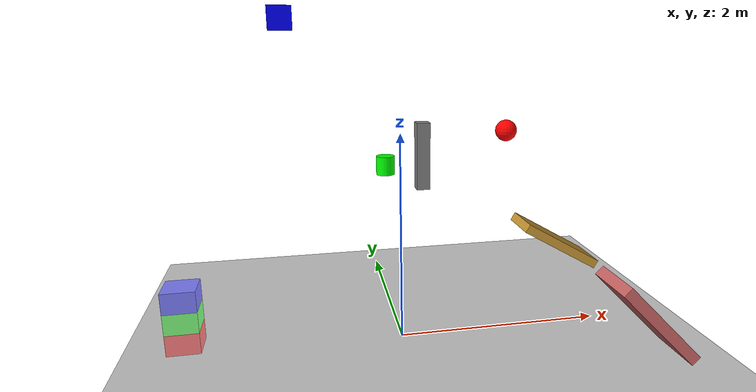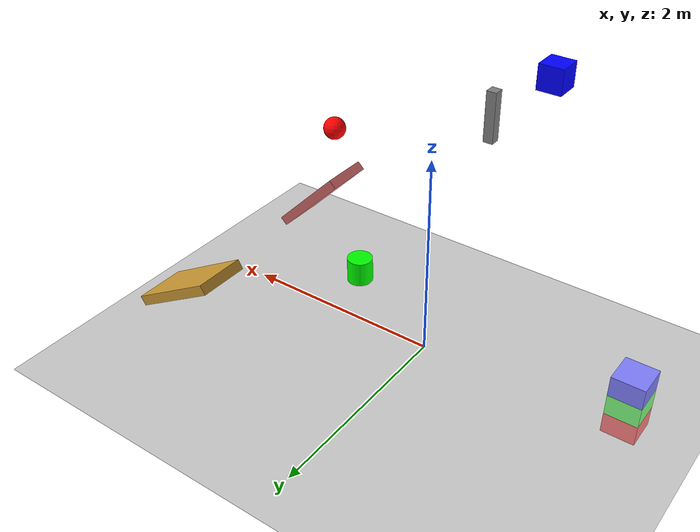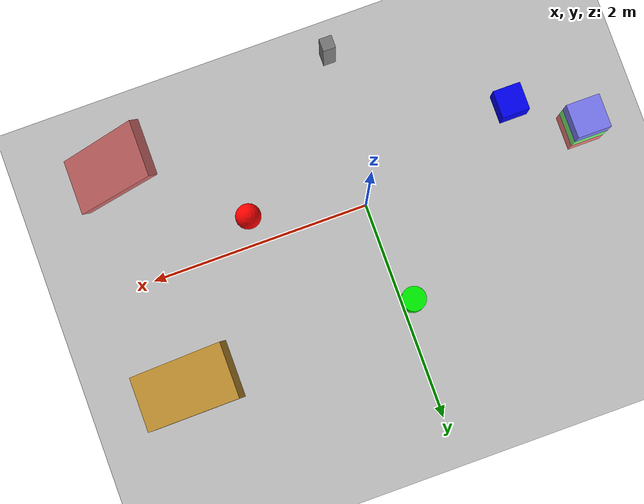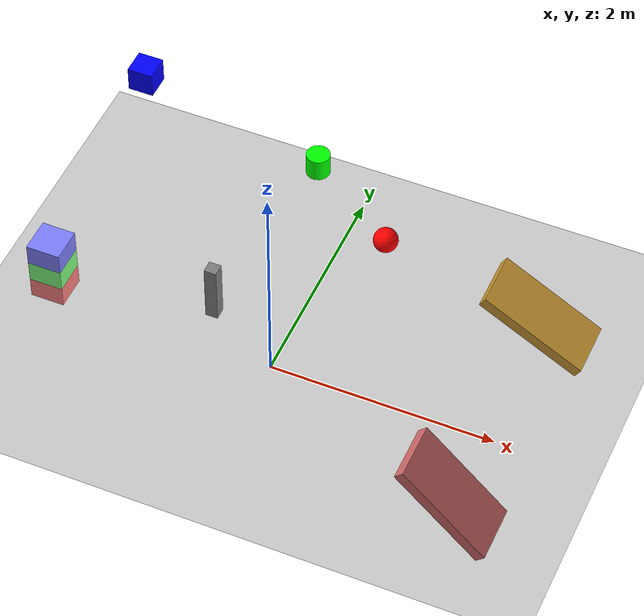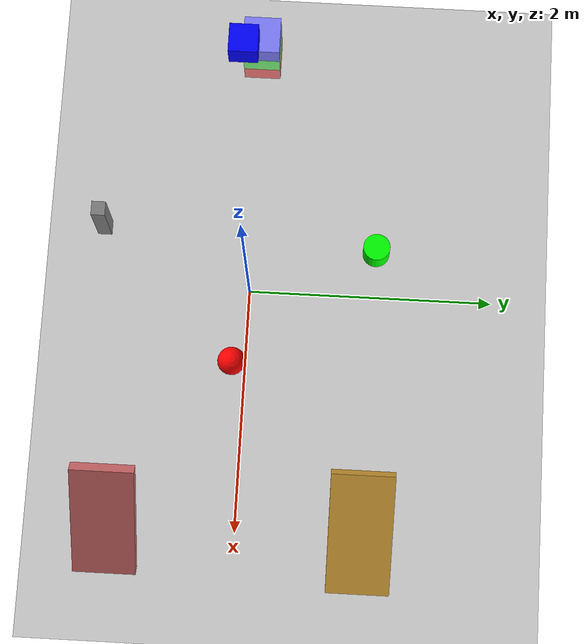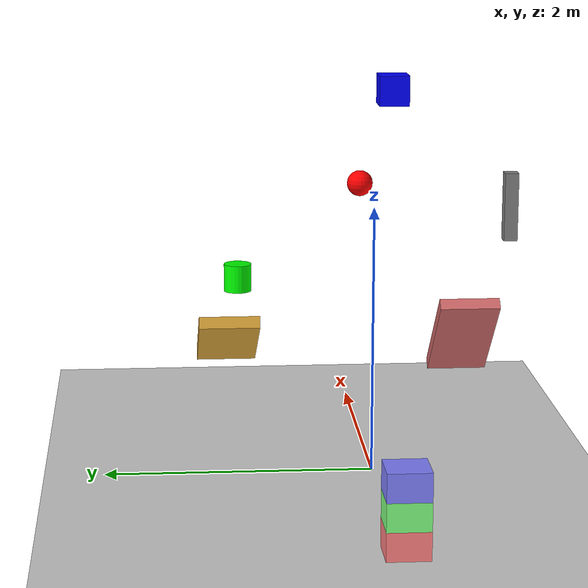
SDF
<?xml version="1.0" ?>
<sdf version="1.7">
  <world name="physics_demo_world">

    <!-- Physics Engine Configuration -->
    <physics type="ode">
      <max_step_size>0.001</max_step_size>
      <real_time_factor>1.0</real_time_factor>
      <real_time_update_rate>1000.0</real_time_update_rate>
      <gravity>0 0 -9.8</gravity>

      <ode>
        <solver>
          <type>quick</type>
          <iters>100</iters>
          <sor>1.3</sor>
        </solver>
        <constraints>
          <cfm>1e-5</cfm>
          <erp>0.2</erp>
          <contact_surface_layer>0.001</contact_surface_layer>
          <contact_max_correcting_vel>100.0</contact_max_correcting_vel>
          <max_contacts>20</max_contacts>
        </constraints>
      </ode>
    </physics>

    <!-- Include default models -->
    <include>
      <uri>model://ground_plane</uri>
    </include>

    <include>
      <uri>model://sun</uri>
    </include>

    <!-- Demo objects to showcase physics -->

    <!-- A sphere that will bounce with different restitution values -->
    <model name="bouncy_sphere">
      <pose>1.0 0.0 2.0 0 0 0</pose>
      <link name="link">
        <collision name="collision">
          <geometry>
            <sphere>
              <radius>0.1</radius>
            </sphere>
          </geometry>
          <surface>
            <bounce>
              <restitution_coefficient>0.9</restitution_coefficient>
              <threshold>100000</threshold>
            </bounce>
          </surface>
        </collision>
        <visual name="visual">
          <geometry>
            <sphere>
              <radius>0.1</radius>
            </sphere>
          </geometry>
          <material>
            <ambient>1 0 0 1</ambient>
            <diffuse>1 0 0 1</diffuse>
            <specular>0.1 0.1 0.1 1</specular>
          </material>
        </visual>
        <inertial>
          <mass>0.5</mass>
          <inertia>
            <ixx>0.001</ixx>
            <ixy>0</ixy>
            <ixz>0</ixz>
            <iyy>0.001</iyy>
            <iyz>0</iyz>
            <izz>0.001</izz>
          </inertia>
        </inertial>
      </link>
    </model>

    <!-- A box that will fall and demonstrate collision physics -->
    <model name="falling_box">
      <pose>-1.0 0.0 3.0 0 0 0</pose>
      <link name="link">
        <collision name="collision">
          <geometry>
            <box>
              <size>0.2 0.2 0.2</size>
            </box>
          </geometry>
          <surface>
            <friction>
              <ode>
                <mu>0.5</mu>
                <mu2>0.5</mu2>
              </ode>
            </friction>
          </surface>
        </collision>
        <visual name="visual">
          <geometry>
            <box>
              <size>0.2 0.2 0.2</size>
            </box>
          </geometry>
          <material>
            <ambient>0 0 1 1</ambient>
            <diffuse>0 0 1 1</diffuse>
            <specular>0.1 0.1 0.1 1</specular>
          </material>
        </visual>
        <inertial>
          <mass>1.0</mass>
          <inertia>
            <ixx>0.006667</ixx>
            <ixy>0</ixy>
            <ixz>0</ixz>
            <iyy>0.006667</iyy>
            <iyz>0</iyz>
            <izz>0.006667</izz>
          </inertia>
        </inertial>
      </link>
    </model>

    <!-- A cylinder to demonstrate rolling physics -->
    <model name="rolling_cylinder">
      <pose>0.0 1.0 1.5 0 0 0</pose>
      <link name="link">
        <collision name="collision">
          <geometry>
            <cylinder>
              <radius>0.1</radius>
              <length>0.2</length>
            </cylinder>
          </geometry>
          <surface>
            <friction>
              <ode>
                <mu>0.8</mu>
                <mu2>0.8</mu2>
              </ode>
            </friction>
          </surface>
        </collision>
        <visual name="visual">
          <geometry>
            <cylinder>
              <radius>0.1</radius>
              <length>0.2</length>
            </cylinder>
          </geometry>
          <material>
            <ambient>0 1 0 1</ambient>
            <diffuse>0 1 0 1</diffuse>
            <specular>0.1 0.1 0.1 1</specular>
          </material>
        </visual>
        <inertial>
          <mass>0.8</mass>
          <inertia>
            <ixx>0.002667</ixx>
            <ixy>0</ixy>
            <ixz>0</ixz>
            <iyy>0.002667</iyy>
            <iyz>0</iyz>
            <izz>0.004</izz>
          </inertia>
        </inertial>
      </link>
    </model>

    <!-- A pendulum to demonstrate joint constraints -->
    <model name="pendulum_demo">
      <pose>0.0 -1.0 2.0 0 0 0</pose>

      <!-- Fixed base -->
      <link name="base">
        <collision name="collision">
          <geometry>
            <box>
              <size>0.1 0.1 0.5</size>
            </box>
          </geometry>
        </collision>
        <visual name="visual">
          <geometry>
            <box>
              <size>0.1 0.1 0.5</size>
            </box>
          </geometry>
          <material>
            <ambient>0.5 0.5 0.5 1</ambient>
            <diffuse>0.5 0.5 0.5 1</diffuse>
          </material>
        </visual>
        <inertial>
          <mass>0.5</mass>
          <inertia>
            <ixx>0.002083</ixx>
            <ixy>0</ixy>
            <ixz>0</ixz>
            <iyy>0.002083</iyy>
            <iyz>0</iyz>
            <izz>0.000417</izz>
          </inertia>
        </inertial>
      </link>

      <!-- Pendulum bob -->
      <link name="bob">
        <collision name="collision">
          <geometry>
            <sphere>
              <radius>0.05</radius>
            </sphere>
          </geometry>
        </collision>
        <visual name="visual">
          <geometry>
            <sphere>
              <radius>0.05</radius>
            </sphere>
          </geometry>
          <material>
            <ambient>1 1 0 1</ambient>
            <diffuse>1 1 0 1</diffuse>
          </material>
        </visual>
        <inertial>
          <mass>0.1</mass>
          <inertia>
            <ixx>0.00001</ixx>
            <ixy>0</ixy>
            <ixz>0</ixz>
            <iyy>0.00001</iyy>
            <iyz>0</iyz>
            <izz>0.00001</izz>
          </inertia>
        </inertial>
      </link>

      <!-- Joint connecting base to bob -->
      <joint name="pivot" type="revolute">
        <parent>base</parent>
        <child>bob</child>
        <axis>
          <xyz>0 1 0</xyz>
          <limit>
            <lower>-1.57</lower>
            <upper>1.57</upper>
            <effort>100</effort>
            <velocity>1</velocity>
          </limit>
        </axis>
        <pose>0 0 -0.15 0 0 0</pose>
      </joint>
    </model>

    <!-- Ramps to demonstrate inclined plane physics -->
    <model name="ramp_30_deg">
      <pose>2.0 1.0 0.5 0 0.5236 0</pose> <!-- 30 degrees = pi/6 radians -->
      <link name="link">
        <collision name="collision">
          <geometry>
            <box>
              <size>1.0 0.5 0.1</size>
            </box>
          </geometry>
        </collision>
        <visual name="visual">
          <geometry>
            <box>
              <size>1.0 0.5 0.1</size>
            </box>
          </geometry>
          <material>
            <ambient>0.8 0.6 0.2 1</ambient>
            <diffuse>0.8 0.6 0.2 1</diffuse>
          </material>
        </visual>
        <inertial>
          <mass>2.0</mass>
          <inertia>
            <ixx>0.085417</ixx>
            <ixy>0</ixy>
            <ixz>0</ixz>
            <iyy>0.166667</iyy>
            <iyz>0</iyz>
            <izz>0.25</izz>
          </inertia>
        </inertial>
      </link>
    </model>

    <model name="ramp_45_deg">
      <pose>2.0 -1.0 0.5 0 0.7854 0</pose> <!-- 45 degrees = pi/4 radians -->
      <link name="link">
        <collision name="collision">
          <geometry>
            <box>
              <size>1.0 0.5 0.1</size>
            </box>
          </geometry>
        </collision>
        <visual name="visual">
          <geometry>
            <box>
              <size>1.0 0.5 0.1</size>
            </box>
          </geometry>
          <material>
            <ambient>0.8 0.4 0.4 1</ambient>
            <diffuse>0.8 0.4 0.4 1</diffuse>
          </material>
        </visual>
        <inertial>
          <mass>2.0</mass>
          <inertia>
            <ixx>0.085417</ixx>
            <ixy>0</ixy>
            <ixz>0</ixz>
            <iyy>0.166667</iyy>
            <iyz>0</iyz>
            <izz>0.25</izz>
          </inertia>
        </inertial>
      </link>
    </model>

    <!-- Stack of boxes to demonstrate stacking physics -->
    <model name="stack_bottom">
      <pose>-2.0 0.0 0.2 0 0 0</pose>
      <link name="link">
        <collision name="collision">
          <geometry>
            <box>
              <size>0.3 0.3 0.2</size>
            </box>
          </geometry>
          <surface>
            <friction>
              <ode>
                <mu>0.7</mu>
                <mu2>0.7</mu2>
              </ode>
            </friction>
          </surface>
        </collision>
        <visual name="visual">
          <geometry>
            <box>
              <size>0.3 0.3 0.2</size>
            </box>
          </geometry>
          <material>
            <ambient>1 0.5 0.5 1</ambient>
            <diffuse>1 0.5 0.5 1</diffuse>
          </material>
        </visual>
        <inertial>
          <mass>2.0</mass>
          <inertia>
            <ixx>0.05</ixx>
            <ixy>0</ixy>
            <ixz>0</ixz>
            <iyy>0.05</iyy>
            <iyz>0</iyz>
            <izz>0.09</izz>
          </inertia>
        </inertial>
      </link>
    </model>

    <model name="stack_middle">
      <pose>-2.0 0.0 0.4 0 0 0</pose>
      <link name="link">
        <collision name="collision">
          <geometry>
            <box>
              <size>0.3 0.3 0.2</size>
            </box>
          </geometry>
          <surface>
            <friction>
              <ode>
                <mu>0.7</mu>
                <mu2>0.7</mu2>
              </ode>
            </friction>
          </surface>
        </collision>
        <visual name="visual">
          <geometry>
            <box>
              <size>0.3 0.3 0.2</size>
            </box>
          </geometry>
          <material>
            <ambient>0.5 1 0.5 1</ambient>
            <diffuse>0.5 1 0.5 1</diffuse>
          </material>
        </visual>
        <inertial>
          <mass>2.0</mass>
          <inertia>
            <ixx>0.05</ixx>
            <ixy>0</ixy>
            <ixz>0</ixz>
            <iyy>0.05</iyy>
            <iyz>0</iyz>
            <izz>0.09</izz>
          </inertia>
        </inertial>
      </link>
    </model>

    <model name="stack_top">
      <pose>-2.0 0.0 0.6 0 0 0</pose>
      <link name="link">
        <collision name="collision">
          <geometry>
            <box>
              <size>0.3 0.3 0.2</size>
            </box>
          </geometry>
          <surface>
            <friction>
              <ode>
                <mu>0.7</mu>
                <mu2>0.7</mu2>
              </ode>
            </friction>
          </surface>
        </collision>
        <visual name="visual">
          <geometry>
            <box>
              <size>0.3 0.3 0.2</size>
            </box>
          </geometry>
          <material>
            <ambient>0.5 0.5 1 1</ambient>
            <diffuse>0.5 0.5 1 1</diffuse>
          </material>
        </visual>
        <inertial>
          <mass>2.0</mass>
          <inertia>
            <ixx>0.05</ixx>
            <ixy>0</ixy>
            <ixz>0</ixz>
            <iyy>0.05</iyy>
            <iyz>0</iyz>
            <izz>0.09</izz>
          </inertia>
        </inertial>
      </link>
    </model>

  </world>
</sdf>
